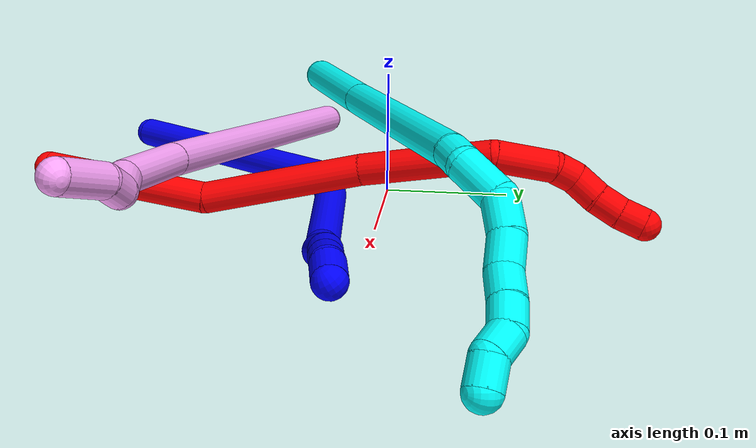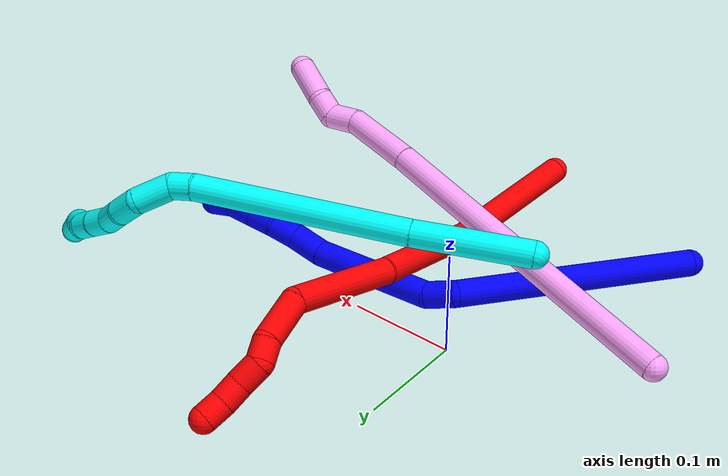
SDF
<sdf version="1.7">
 <world name="default">
  <plugin name="TubeGeneratorPlugin" filename="libtube_generator_plugin.so"/>
  <model name="photoneo_s_sensor">
   <static>1</static>
   <pose>0 0 2 1.57079 1.57079 3.14159</pose>
   <link name="link">
    <inertial><mass>0.1</mass></inertial>
    <sensor name="sensor" type="depth">
     <update_rate>30</update_rate>
     <camera>
      <horizontal_fov>1.22</horizontal_fov>
      <image><width>1920</width><height>1200</height><format>B8G8R8</format></image>
      <clip><near>0.1</near><far>4</far></clip>
      <depth_camera><output>points</output></depth_camera>
     </camera>
     <plugin name="camera_plugin" filename="libgazebo_ros_depth_camera.so">
      <baseline>0.2</baseline>
      <alwaysOn>1</alwaysOn>
      <updateRate>0.0</updateRate>
      <cameraName>camera_ir</cameraName>
      <imageTopicName>/camera/color/image_raw</imageTopicName>
      <cameraInfoTopicName>/camera/color/camera_info</cameraInfoTopicName>
      <depthImageTopicName>/camera/depth/image_raw</depthImageTopicName>
      <depthImageCameraInfoTopicName>/camera/depth/camera_info</depthImageCameraInfoTopicName>
      <pointCloudTopicName>/camera/depth/points</pointCloudTopicName>
      <frameName>fr_optical</frameName>
      <pointCloudCutoff>0.1</pointCloudCutoff>
      <pointCloudCutoffMax>2.0</pointCloudCutoffMax>
      <distortionK1>0</distortionK1>
      <distortionK2>0</distortionK2>
      <distortionK3>0</distortionK3>
      <distortionT1>0</distortionT1>
      <distortionT2>0</distortionT2>
      <CxPrime>0</CxPrime>
      <Cx>0</Cx>
      <Cy>0</Cy>
      <focalLength>0</focalLength>
      <hackBaseline>0</hackBaseline>
     </plugin>
    </sensor>
   </link>
  </model>
  <gravity>0 0 -9.8</gravity>
  <magnetic_field>6e-06 2.3e-05 -4.2e-05</magnetic_field>
  <atmosphere type="adiabatic"/>
  <physics name="default_physics" default="0" type="ode">
   <max_step_size>0.003</max_step_size>
   <real_time_factor>1</real_time_factor>
   <real_time_update_rate>1000</real_time_update_rate>
   <max_contacts>10000</max_contacts>
   <ode>
    <solver>
     <type>quick</type>
     <iters>100</iters>
     <sor>1.3</sor>
     <use_dynamic_moi_rescaling>0</use_dynamic_moi_rescaling>
    </solver>
    <constraints>
     <contact_max_correcting_vel>0</contact_max_correcting_vel>
     <contact_surface_layer>0.001</contact_surface_layer>
     <cfm>0</cfm>
     <erp>0.2</erp>
    </constraints>
   </ode>
  </physics>
  <scene><ambient>0.4 0.4 0.4 1</ambient><background>0.7 0.7 0.7 1</background><shadows>0</shadows></scene>
  <audio><device>default</device></audio>
  <spherical_coordinates>
   <surface_model>EARTH_WGS84</surface_model>
   <latitude_deg>0</latitude_deg>
   <longitude_deg>0</longitude_deg>
   <elevation>0</elevation>
   <heading_deg>0</heading_deg>
  </spherical_coordinates>
  <model name="bin">
   <static>1</static>
   <link name="bottom">
    <collision name="collision-bottom">
     <pose>0 0 -0.01 0 -0 0</pose>
     <geometry><box><size>0.8 0.6 0.02</size></box></geometry>
     <surface>
      <friction><ode><mu>100</mu><mu2>100</mu2></ode></friction>
      <contact><collide_bitmask>65535</collide_bitmask></contact>
     </surface>
    </collision>
   </link>
   <link name="west_wall">
    <collision name="collision-west_wall">
     <pose>-0.41 0 0.1 0 -0 0</pose>
     <geometry><box><size>0.02 0.6 0.2</size></box></geometry>
     <surface>
      <friction><ode><mu>100</mu><mu2>100</mu2></ode></friction>
      <contact><collide_bitmask>65535</collide_bitmask></contact>
     </surface>
    </collision>
   </link>
   <link name="east_wall">
    <collision name="collision-east_wall">
     <pose>0.41 0 0.1 0 -0 0</pose>
     <geometry><box><size>0.02 0.6 0.2</size></box></geometry>
     <surface>
      <friction><ode><mu>100</mu><mu2>100</mu2></ode></friction>
      <contact><collide_bitmask>65535</collide_bitmask></contact>
     </surface>
    </collision>
   </link>
   <link name="south_wall">
    <collision name="collision-south_wall">
     <pose>0 -0.31 0.1 0 -0 0</pose>
     <geometry><box><size>0.8 0.02 0.2</size></box></geometry>
     <surface>
      <friction><ode><mu>100</mu><mu2>100</mu2></ode></friction>
      <contact><collide_bitmask>65535</collide_bitmask></contact>
     </surface>
    </collision>
   </link>
   <link name="north_wall">
    <collision name="collision-north_wall">
     <pose>0 0.31 0.1 0 -0 0</pose>
     <geometry><box><size>0.8 0.02 0.2</size></box></geometry>
     <surface>
      <friction><ode><mu>100</mu><mu2>100</mu2></ode></friction>
      <contact><collide_bitmask>65535</collide_bitmask></contact>
     </surface>
    </collision>
   </link>
  </model>
  <model name="1">
   <static>0</static>
   <link name="1">
    <collision name="collision-cylinder-e_1_1_4">
     <pose>0.072208 0.083812 -0.031362 -1.92886 0.678934 -0.941946</pose>
     <geometry><cylinder><radius>0.0125</radius><length>0.229974</length></cylinder></geometry>
     <surface>
      <friction><ode><mu>1.16</mu><mu2>1.16</mu2><slip1>0</slip1><slip2>0</slip2></ode></friction>
      <contact><ode><kp>1e+06</kp><kd>1</kd><max_vel>0</max_vel><min_depth>0.001</min_depth></ode></contact>
     </surface>
    </collision>
    <visual name="visual-cylinder-e_1_1_4">
     <pose>0.072208 0.083812 -0.031362 -1.92886 0.678934 -0.941946</pose>
     <geometry><cylinder><radius>0.0125</radius><length>0.229974</length></cylinder></geometry>
     <material><ambient>0 0 1 1</ambient></material>
    </visual>
    <collision name="collision-cylinder-e_2_4_5">
     <pose>0.157753 0.170677 -0.066201 -2.42113 1.23689 -2.16789</pose>
     <geometry><cylinder><radius>0.0125</radius><length>0.028236</length></cylinder></geometry>
     <surface>
      <friction><ode><mu>1.16</mu><mu2>1.16</mu2><slip1>0</slip1><slip2>0</slip2></ode></friction>
      <contact><ode><kp>1e+06</kp><kd>1</kd><max_vel>0</max_vel><min_depth>0.001</min_depth></ode></contact>
     </surface>
    </collision>
    <visual name="visual-cylinder-e_2_4_5">
     <pose>0.157753 0.170677 -0.066201 -2.42113 1.23689 -2.16789</pose>
     <geometry><cylinder><radius>0.0125</radius><length>0.028236</length></cylinder></geometry>
     <material><ambient>0 0 1 1</ambient></material>
    </visual>
    <collision name="collision-cylinder-e_3_5_6">
     <pose>0.229198 0.179851 -0.062417 -0.700445 1.40879 -0.60199</pose>
     <geometry><cylinder><radius>0.0125</radius><length>0.117756</length></cylinder></geometry>
     <surface>
      <friction><ode><mu>1.16</mu><mu2>1.16</mu2><slip1>0</slip1><slip2>0</slip2></ode></friction>
      <contact><ode><kp>1e+06</kp><kd>1</kd><max_vel>0</max_vel><min_depth>0.001</min_depth></ode></contact>
     </surface>
    </collision>
    <visual name="visual-cylinder-e_3_5_6">
     <pose>0.229198 0.179851 -0.062417 -0.700445 1.40879 -0.60199</pose>
     <geometry><cylinder><radius>0.0125</radius><length>0.117756</length></cylinder></geometry>
     <material><ambient>0 0 1 1</ambient></material>
    </visual>
    <collision name="collision-cylinder-e_4_6_7">
     <pose>0.301565 0.189495 -0.049901 -0.590583 1.15322 -0.390598</pose>
     <geometry><cylinder><radius>0.0125</radius><length>0.031201</length></cylinder></geometry>
     <surface>
      <friction><ode><mu>1.16</mu><mu2>1.16</mu2><slip1>0</slip1><slip2>0</slip2></ode></friction>
      <contact><ode><kp>1e+06</kp><kd>1</kd><max_vel>0</max_vel><min_depth>0.001</min_depth></ode></contact>
     </surface>
    </collision>
    <visual name="visual-cylinder-e_4_6_7">
     <pose>0.301565 0.189495 -0.049901 -0.590583 1.15322 -0.390598</pose>
     <geometry><cylinder><radius>0.0125</radius><length>0.031201</length></cylinder></geometry>
     <material><ambient>0 0 1 1</ambient></material>
    </visual>
    <collision name="collision-cylinder-e_5_7_8">
     <pose>0.32625 0.198736 -0.040752 -0.972942 0.984902 -0.552978</pose>
     <geometry><cylinder><radius>0.0125</radius><length>0.025022</length></cylinder></geometry>
     <surface>
      <friction><ode><mu>1.16</mu><mu2>1.16</mu2><slip1>0</slip1><slip2>0</slip2></ode></friction>
      <contact><ode><kp>1e+06</kp><kd>1</kd><max_vel>0</max_vel><min_depth>0.001</min_depth></ode></contact>
     </surface>
    </collision>
    <visual name="visual-cylinder-e_5_7_8">
     <pose>0.32625 0.198736 -0.040752 -0.972942 0.984902 -0.552978</pose>
     <geometry><cylinder><radius>0.0125</radius><length>0.025022</length></cylinder></geometry>
     <material><ambient>0 0 1 1</ambient></material>
    </visual>
    <collision name="collision-cylinder-e_6_8_9">
     <pose>0.347037 0.207132 -0.034347 -0.817519 1.23032 -0.594053</pose>
     <geometry><cylinder><radius>0.0125</radius><length>0.021987</length></cylinder></geometry>
     <surface>
      <friction><ode><mu>1.16</mu><mu2>1.16</mu2><slip1>0</slip1><slip2>0</slip2></ode></friction>
      <contact><ode><kp>1e+06</kp><kd>1</kd><max_vel>0</max_vel><min_depth>0.001</min_depth></ode></contact>
     </surface>
    </collision>
    <visual name="visual-cylinder-e_6_8_9">
     <pose>0.347037 0.207132 -0.034347 -0.817519 1.23032 -0.594053</pose>
     <geometry><cylinder><radius>0.0125</radius><length>0.021987</length></cylinder></geometry>
     <material><ambient>0 0 1 1</ambient></material>
    </visual>
    <collision name="collision-cylinder-e_7_9_10">
     <pose>0.368501 0.21329 -0.029075 -0.900192 1.19014 -0.632211</pose>
     <geometry><cylinder><radius>0.0125</radius><length>0.023916</length></cylinder></geometry>
     <surface>
      <friction><ode><mu>1.16</mu><mu2>1.16</mu2><slip1>0</slip1><slip2>0</slip2></ode></friction>
      <contact><ode><kp>1e+06</kp><kd>1</kd><max_vel>0</max_vel><min_depth>0.001</min_depth></ode></contact>
     </surface>
    </collision>
    <visual name="visual-cylinder-e_7_9_10">
     <pose>0.368501 0.21329 -0.029075 -0.900192 1.19014 -0.632211</pose>
     <geometry><cylinder><radius>0.0125</radius><length>0.023916</length></cylinder></geometry>
     <material><ambient>0 0 1 1</ambient></material>
    </visual>
    <collision name="collision-cylinder-e_8_10_2">
     <pose>0.390456 0.218046 -0.027083 -2.11384 1.43445 -1.99279</pose>
     <geometry><cylinder><radius>0.0125</radius><length>0.021908</length></cylinder></geometry>
     <surface>
      <friction><ode><mu>1.16</mu><mu2>1.16</mu2><slip1>0</slip1><slip2>0</slip2></ode></friction>
      <contact><ode><kp>1e+06</kp><kd>1</kd><max_vel>0</max_vel><min_depth>0.001</min_depth></ode></contact>
     </surface>
    </collision>
    <visual name="visual-cylinder-e_8_10_2">
     <pose>0.390456 0.218046 -0.027083 -2.11384 1.43445 -1.99279</pose>
     <geometry><cylinder><radius>0.0125</radius><length>0.021908</length></cylinder></geometry>
     <material><ambient>0 0 1 1</ambient></material>
    </visual>
    <collision name="collision-sphere-2">
     <pose>0.401308 0.219321 -0.027852 0 -0 0</pose>
     <geometry><sphere><radius>0.0125</radius></sphere></geometry>
     <surface>
      <friction><ode><mu>1.16</mu><mu2>1.16</mu2><slip1>0</slip1><slip2>0</slip2></ode></friction>
      <contact><ode><kp>1e+06</kp><kd>1</kd><max_vel>0</max_vel><min_depth>0.001</min_depth></ode></contact>
     </surface>
    </collision>
    <visual name="visual-sphere-2">
     <pose>0.401308 0.219321 -0.027852 0 -0 0</pose>
     <geometry><sphere><radius>0.0125</radius></sphere></geometry>
     <material><ambient>0 0 1 1</ambient></material>
    </visual>
    <collision name="collision-sphere-10">
     <pose>0.379604 0.216771 -0.026314 0 -0 0</pose>
     <geometry><sphere><radius>0.0125</radius></sphere></geometry>
     <surface>
      <friction><ode><mu>1.16</mu><mu2>1.16</mu2><slip1>0</slip1><slip2>0</slip2></ode></friction>
      <contact><ode><kp>1e+06</kp><kd>1</kd><max_vel>0</max_vel><min_depth>0.001</min_depth></ode></contact>
     </surface>
    </collision>
    <visual name="visual-sphere-10">
     <pose>0.379604 0.216771 -0.026314 0 -0 0</pose>
     <geometry><sphere><radius>0.0125</radius></sphere></geometry>
     <material><ambient>0 0 1 1</ambient></material>
    </visual>
    <collision name="collision-sphere-9">
     <pose>0.357399 0.20981 -0.031836 0 -0 0</pose>
     <geometry><sphere><radius>0.0125</radius></sphere></geometry>
     <surface>
      <friction><ode><mu>1.16</mu><mu2>1.16</mu2><slip1>0</slip1><slip2>0</slip2></ode></friction>
      <contact><ode><kp>1e+06</kp><kd>1</kd><max_vel>0</max_vel><min_depth>0.001</min_depth></ode></contact>
     </surface>
    </collision>
    <visual name="visual-sphere-9">
     <pose>0.357399 0.20981 -0.031836 0 -0 0</pose>
     <geometry><sphere><radius>0.0125</radius></sphere></geometry>
     <material><ambient>0 0 1 1</ambient></material>
    </visual>
    <collision name="collision-sphere-4">
     <pose>0.144415 0.167624 -0.062723 0 -0 0</pose>
     <geometry><sphere><radius>0.0125</radius></sphere></geometry>
     <surface>
      <friction><ode><mu>1.16</mu><mu2>1.16</mu2><slip1>0</slip1><slip2>0</slip2></ode></friction>
      <contact><ode><kp>1e+06</kp><kd>1</kd><max_vel>0</max_vel><min_depth>0.001</min_depth></ode></contact>
     </surface>
    </collision>
    <visual name="visual-sphere-4">
     <pose>0.144415 0.167624 -0.062723 0 -0 0</pose>
     <geometry><sphere><radius>0.0125</radius></sphere></geometry>
     <material><ambient>0 0 1 1</ambient></material>
    </visual>
    <collision name="collision-sphere-1">
     <geometry><sphere><radius>0.0125</radius></sphere></geometry>
     <surface>
      <friction><ode><mu>1.16</mu><mu2>1.16</mu2><slip1>0</slip1><slip2>0</slip2></ode></friction>
      <contact><ode><kp>1e+06</kp><kd>1</kd><max_vel>0</max_vel><min_depth>0.001</min_depth></ode></contact>
     </surface>
    </collision>
    <visual name="visual-sphere-1">
     <geometry><sphere><radius>0.0125</radius></sphere></geometry>
     <material><ambient>0 0 1 1</ambient></material>
    </visual>
    <collision name="collision-sphere-8">
     <pose>0.336674 0.204454 -0.036858 0 -0 0</pose>
     <geometry><sphere><radius>0.0125</radius></sphere></geometry>
     <surface>
      <friction><ode><mu>1.16</mu><mu2>1.16</mu2><slip1>0</slip1><slip2>0</slip2></ode></friction>
      <contact><ode><kp>1e+06</kp><kd>1</kd><max_vel>0</max_vel><min_depth>0.001</min_depth></ode></contact>
     </surface>
    </collision>
    <visual name="visual-sphere-8">
     <pose>0.336674 0.204454 -0.036858 0 -0 0</pose>
     <geometry><sphere><radius>0.0125</radius></sphere></geometry>
     <material><ambient>0 0 1 1</ambient></material>
    </visual>
    <collision name="collision-sphere-5">
     <pose>0.171091 0.173729 -0.069678 0 -0 0</pose>
     <geometry><sphere><radius>0.0125</radius></sphere></geometry>
     <surface>
      <friction><ode><mu>1.16</mu><mu2>1.16</mu2><slip1>0</slip1><slip2>0</slip2></ode></friction>
      <contact><ode><kp>1e+06</kp><kd>1</kd><max_vel>0</max_vel><min_depth>0.001</min_depth></ode></contact>
     </surface>
    </collision>
    <visual name="visual-sphere-5">
     <pose>0.171091 0.173729 -0.069678 0 -0 0</pose>
     <geometry><sphere><radius>0.0125</radius></sphere></geometry>
     <material><ambient>0 0 1 1</ambient></material>
    </visual>
    <collision name="collision-sphere-6">
     <pose>0.287305 0.185972 -0.055156 0 -0 0</pose>
     <geometry><sphere><radius>0.0125</radius></sphere></geometry>
     <surface>
      <friction><ode><mu>1.16</mu><mu2>1.16</mu2><slip1>0</slip1><slip2>0</slip2></ode></friction>
      <contact><ode><kp>1e+06</kp><kd>1</kd><max_vel>0</max_vel><min_depth>0.001</min_depth></ode></contact>
     </surface>
    </collision>
    <visual name="visual-sphere-6">
     <pose>0.287305 0.185972 -0.055156 0 -0 0</pose>
     <geometry><sphere><radius>0.0125</radius></sphere></geometry>
     <material><ambient>0 0 1 1</ambient></material>
    </visual>
    <collision name="collision-sphere-7">
     <pose>0.315825 0.193018 -0.044646 0 -0 0</pose>
     <geometry><sphere><radius>0.0125</radius></sphere></geometry>
     <surface>
      <friction><ode><mu>1.16</mu><mu2>1.16</mu2><slip1>0</slip1><slip2>0</slip2></ode></friction>
      <contact><ode><kp>1e+06</kp><kd>1</kd><max_vel>0</max_vel><min_depth>0.001</min_depth></ode></contact>
     </surface>
    </collision>
    <visual name="visual-sphere-7">
     <pose>0.315825 0.193018 -0.044646 0 -0 0</pose>
     <geometry><sphere><radius>0.0125</radius></sphere></geometry>
     <material><ambient>0 0 1 1</ambient></material>
    </visual>
    <inertial>
     <pose>0.18124 0.14118 -0.042104 0 -0 0</pose>
     <mass>0.5</mass>
     <inertia>
      <ixx>-0.000138</ixx>
      <ixy>0</ixy>
      <ixz>0</ixz>
      <iyy>-0.000214</iyy>
      <iyz>0</iyz>
      <izz>-0.00156</izz>
     </inertia>
    </inertial>
   </link>
   <pose>-0.109102 -0.235906 0.011498 0.529032 0.159554 0.060235</pose>
  </model>
  <model name="2">
   <static>0</static>
   <link name="2">
    <collision name="collision-cylinder-e_1_1_4">
     <pose>0.010114 0.062442 -0.024041 -1.93831 0.150023 -0.218061</pose>
     <geometry><cylinder><radius>0.0125</radius><length>0.135341</length></cylinder></geometry>
     <surface>
      <friction><ode><mu>1.16</mu><mu2>1.16</mu2><slip1>0</slip1><slip2>0</slip2></ode></friction>
      <contact><ode><kp>1e+06</kp><kd>1</kd><max_vel>0</max_vel><min_depth>0.001</min_depth></ode></contact>
     </surface>
    </collision>
    <visual name="visual-cylinder-e_1_1_4">
     <pose>0.010114 0.062442 -0.024041 -1.93831 0.150023 -0.218061</pose>
     <geometry><cylinder><radius>0.0125</radius><length>0.135341</length></cylinder></geometry>
     <material><ambient>1 0 0 1</ambient></material>
    </visual>
    <collision name="collision-cylinder-e_2_4_5">
     <pose>0.018973 0.188661 -0.05104 -1.61715 -0.019664 0.020598</pose>
     <geometry><cylinder><radius>0.0125</radius><length>0.127715</length></cylinder></geometry>
     <surface>
      <friction><ode><mu>1.16</mu><mu2>1.16</mu2><slip1>0</slip1><slip2>0</slip2></ode></friction>
      <contact><ode><kp>1e+06</kp><kd>1</kd><max_vel>0</max_vel><min_depth>0.001</min_depth></ode></contact>
     </surface>
    </collision>
    <visual name="visual-cylinder-e_2_4_5">
     <pose>0.018973 0.188661 -0.05104 -1.61715 -0.019664 0.020598</pose>
     <geometry><cylinder><radius>0.0125</radius><length>0.127715</length></cylinder></geometry>
     <material><ambient>1 0 0 1</ambient></material>
    </visual>
    <collision name="collision-cylinder-e_3_5_6">
     <pose>0.02542 0.304742 -0.056993 -1.62798 0.145995 -0.154558</pose>
     <geometry><cylinder><radius>0.0125</radius><length>0.105906</length></cylinder></geometry>
     <surface>
      <friction><ode><mu>1.16</mu><mu2>1.16</mu2><slip1>0</slip1><slip2>0</slip2></ode></friction>
      <contact><ode><kp>1e+06</kp><kd>1</kd><max_vel>0</max_vel><min_depth>0.001</min_depth></ode></contact>
     </surface>
    </collision>
    <visual name="visual-cylinder-e_3_5_6">
     <pose>0.02542 0.304742 -0.056993 -1.62798 0.145995 -0.154558</pose>
     <geometry><cylinder><radius>0.0125</radius><length>0.105906</length></cylinder></geometry>
     <material><ambient>1 0 0 1</ambient></material>
    </visual>
    <collision name="collision-cylinder-e_4_6_7">
     <pose>0.029333 0.377438 -0.071012 -2.06644 -0.162079 0.270809</pose>
     <geometry><cylinder><radius>0.0125</radius><length>0.046979</length></cylinder></geometry>
     <surface>
      <friction><ode><mu>1.16</mu><mu2>1.16</mu2><slip1>0</slip1><slip2>0</slip2></ode></friction>
      <contact><ode><kp>1e+06</kp><kd>1</kd><max_vel>0</max_vel><min_depth>0.001</min_depth></ode></contact>
     </surface>
    </collision>
    <visual name="visual-cylinder-e_4_6_7">
     <pose>0.029333 0.377438 -0.071012 -2.06644 -0.162079 0.270809</pose>
     <geometry><cylinder><radius>0.0125</radius><length>0.046979</length></cylinder></geometry>
     <material><ambient>1 0 0 1</ambient></material>
    </visual>
    <collision name="collision-cylinder-e_5_7_8">
     <pose>0.022961 0.404383 -0.089381 -2.41305 -0.256491 0.652255</pose>
     <geometry><cylinder><radius>0.0125</radius><length>0.02035</length></cylinder></geometry>
     <surface>
      <friction><ode><mu>1.16</mu><mu2>1.16</mu2><slip1>0</slip1><slip2>0</slip2></ode></friction>
      <contact><ode><kp>1e+06</kp><kd>1</kd><max_vel>0</max_vel><min_depth>0.001</min_depth></ode></contact>
     </surface>
    </collision>
    <visual name="visual-cylinder-e_5_7_8">
     <pose>0.022961 0.404383 -0.089381 -2.41305 -0.256491 0.652255</pose>
     <geometry><cylinder><radius>0.0125</radius><length>0.02035</length></cylinder></geometry>
     <material><ambient>1 0 0 1</ambient></material>
    </visual>
    <collision name="collision-cylinder-e_6_8_9">
     <pose>0.024684 0.417604 -0.105054 -2.46653 0.383387 -1.01026</pose>
     <geometry><cylinder><radius>0.0125</radius><length>0.023011</length></cylinder></geometry>
     <surface>
      <friction><ode><mu>1.16</mu><mu2>1.16</mu2><slip1>0</slip1><slip2>0</slip2></ode></friction>
      <contact><ode><kp>1e+06</kp><kd>1</kd><max_vel>0</max_vel><min_depth>0.001</min_depth></ode></contact>
     </surface>
    </collision>
    <visual name="visual-cylinder-e_6_8_9">
     <pose>0.024684 0.417604 -0.105054 -2.46653 0.383387 -1.01026</pose>
     <geometry><cylinder><radius>0.0125</radius><length>0.023011</length></cylinder></geometry>
     <material><ambient>1 0 0 1</ambient></material>
    </visual>
    <collision name="collision-cylinder-e_7_9_10">
     <pose>0.0314 0.431407 -0.120417 -2.349 0.236222 -0.552666</pose>
     <geometry><cylinder><radius>0.0125</radius><length>0.020609</length></cylinder></geometry>
     <surface>
      <friction><ode><mu>1.16</mu><mu2>1.16</mu2><slip1>0</slip1><slip2>0</slip2></ode></friction>
      <contact><ode><kp>1e+06</kp><kd>1</kd><max_vel>0</max_vel><min_depth>0.001</min_depth></ode></contact>
     </surface>
    </collision>
    <visual name="visual-cylinder-e_7_9_10">
     <pose>0.0314 0.431407 -0.120417 -2.349 0.236222 -0.552666</pose>
     <geometry><cylinder><radius>0.0125</radius><length>0.020609</length></cylinder></geometry>
     <material><ambient>1 0 0 1</ambient></material>
    </visual>
    <collision name="collision-cylinder-e_8_10_2">
     <pose>0.03622 0.446537 -0.133033 -2.18044 0.24219 -0.458624</pose>
     <geometry><cylinder><radius>0.0125</radius><length>0.020088</length></cylinder></geometry>
     <surface>
      <friction><ode><mu>1.16</mu><mu2>1.16</mu2><slip1>0</slip1><slip2>0</slip2></ode></friction>
      <contact><ode><kp>1e+06</kp><kd>1</kd><max_vel>0</max_vel><min_depth>0.001</min_depth></ode></contact>
     </surface>
    </collision>
    <visual name="visual-cylinder-e_8_10_2">
     <pose>0.03622 0.446537 -0.133033 -2.18044 0.24219 -0.458624</pose>
     <geometry><cylinder><radius>0.0125</radius><length>0.020088</length></cylinder></geometry>
     <material><ambient>1 0 0 1</ambient></material>
    </visual>
    <collision name="collision-sphere-2">
     <pose>0.038629 0.454531 -0.138617 0 -0 0</pose>
     <geometry><sphere><radius>0.0125</radius></sphere></geometry>
     <surface>
      <friction><ode><mu>1.16</mu><mu2>1.16</mu2><slip1>0</slip1><slip2>0</slip2></ode></friction>
      <contact><ode><kp>1e+06</kp><kd>1</kd><max_vel>0</max_vel><min_depth>0.001</min_depth></ode></contact>
     </surface>
    </collision>
    <visual name="visual-sphere-2">
     <pose>0.038629 0.454531 -0.138617 0 -0 0</pose>
     <geometry><sphere><radius>0.0125</radius></sphere></geometry>
     <material><ambient>1 0 0 1</ambient></material>
    </visual>
    <collision name="collision-sphere-10">
     <pose>0.033811 0.438542 -0.12745 0 -0 0</pose>
     <geometry><sphere><radius>0.0125</radius></sphere></geometry>
     <surface>
      <friction><ode><mu>1.16</mu><mu2>1.16</mu2><slip1>0</slip1><slip2>0</slip2></ode></friction>
      <contact><ode><kp>1e+06</kp><kd>1</kd><max_vel>0</max_vel><min_depth>0.001</min_depth></ode></contact>
     </surface>
    </collision>
    <visual name="visual-sphere-10">
     <pose>0.033811 0.438542 -0.12745 0 -0 0</pose>
     <geometry><sphere><radius>0.0125</radius></sphere></geometry>
     <material><ambient>1 0 0 1</ambient></material>
    </visual>
    <collision name="collision-sphere-9">
     <pose>0.028988 0.424272 -0.113384 0 -0 0</pose>
     <geometry><sphere><radius>0.0125</radius></sphere></geometry>
     <surface>
      <friction><ode><mu>1.16</mu><mu2>1.16</mu2><slip1>0</slip1><slip2>0</slip2></ode></friction>
      <contact><ode><kp>1e+06</kp><kd>1</kd><max_vel>0</max_vel><min_depth>0.001</min_depth></ode></contact>
     </surface>
    </collision>
    <visual name="visual-sphere-9">
     <pose>0.028988 0.424272 -0.113384 0 -0 0</pose>
     <geometry><sphere><radius>0.0125</radius></sphere></geometry>
     <material><ambient>1 0 0 1</ambient></material>
    </visual>
    <collision name="collision-sphere-4">
     <pose>0.020228 0.124885 -0.048081 0 -0 0</pose>
     <geometry><sphere><radius>0.0125</radius></sphere></geometry>
     <surface>
      <friction><ode><mu>1.16</mu><mu2>1.16</mu2><slip1>0</slip1><slip2>0</slip2></ode></friction>
      <contact><ode><kp>1e+06</kp><kd>1</kd><max_vel>0</max_vel><min_depth>0.001</min_depth></ode></contact>
     </surface>
    </collision>
    <visual name="visual-sphere-4">
     <pose>0.020228 0.124885 -0.048081 0 -0 0</pose>
     <geometry><sphere><radius>0.0125</radius></sphere></geometry>
     <material><ambient>1 0 0 1</ambient></material>
    </visual>
    <collision name="collision-sphere-1">
     <geometry><sphere><radius>0.0125</radius></sphere></geometry>
     <surface>
      <friction><ode><mu>1.16</mu><mu2>1.16</mu2><slip1>0</slip1><slip2>0</slip2></ode></friction>
      <contact><ode><kp>1e+06</kp><kd>1</kd><max_vel>0</max_vel><min_depth>0.001</min_depth></ode></contact>
     </surface>
    </collision>
    <visual name="visual-sphere-1">
     <geometry><sphere><radius>0.0125</radius></sphere></geometry>
     <material><ambient>1 0 0 1</ambient></material>
    </visual>
    <collision name="collision-sphere-8">
     <pose>0.02038 0.410936 -0.096724 0 -0 0</pose>
     <geometry><sphere><radius>0.0125</radius></sphere></geometry>
     <surface>
      <friction><ode><mu>1.16</mu><mu2>1.16</mu2><slip1>0</slip1><slip2>0</slip2></ode></friction>
      <contact><ode><kp>1e+06</kp><kd>1</kd><max_vel>0</max_vel><min_depth>0.001</min_depth></ode></contact>
     </surface>
    </collision>
    <visual name="visual-sphere-8">
     <pose>0.02038 0.410936 -0.096724 0 -0 0</pose>
     <geometry><sphere><radius>0.0125</radius></sphere></geometry>
     <material><ambient>1 0 0 1</ambient></material>
    </visual>
    <collision name="collision-sphere-5">
     <pose>0.017717 0.252438 -0.053998 0 -0 0</pose>
     <geometry><sphere><radius>0.0125</radius></sphere></geometry>
     <surface>
      <friction><ode><mu>1.16</mu><mu2>1.16</mu2><slip1>0</slip1><slip2>0</slip2></ode></friction>
      <contact><ode><kp>1e+06</kp><kd>1</kd><max_vel>0</max_vel><min_depth>0.001</min_depth></ode></contact>
     </surface>
    </collision>
    <visual name="visual-sphere-5">
     <pose>0.017717 0.252438 -0.053998 0 -0 0</pose>
     <geometry><sphere><radius>0.0125</radius></sphere></geometry>
     <material><ambient>1 0 0 1</ambient></material>
    </visual>
    <collision name="collision-sphere-6">
     <pose>0.033124 0.357046 -0.059987 0 -0 0</pose>
     <geometry><sphere><radius>0.0125</radius></sphere></geometry>
     <surface>
      <friction><ode><mu>1.16</mu><mu2>1.16</mu2><slip1>0</slip1><slip2>0</slip2></ode></friction>
      <contact><ode><kp>1e+06</kp><kd>1</kd><max_vel>0</max_vel><min_depth>0.001</min_depth></ode></contact>
     </surface>
    </collision>
    <visual name="visual-sphere-6">
     <pose>0.033124 0.357046 -0.059987 0 -0 0</pose>
     <geometry><sphere><radius>0.0125</radius></sphere></geometry>
     <material><ambient>1 0 0 1</ambient></material>
    </visual>
    <collision name="collision-sphere-7">
     <pose>0.025543 0.39783 -0.082037 0 -0 0</pose>
     <geometry><sphere><radius>0.0125</radius></sphere></geometry>
     <surface>
      <friction><ode><mu>1.16</mu><mu2>1.16</mu2><slip1>0</slip1><slip2>0</slip2></ode></friction>
      <contact><ode><kp>1e+06</kp><kd>1</kd><max_vel>0</max_vel><min_depth>0.001</min_depth></ode></contact>
     </surface>
    </collision>
    <visual name="visual-sphere-7">
     <pose>0.025543 0.39783 -0.082037 0 -0 0</pose>
     <geometry><sphere><radius>0.0125</radius></sphere></geometry>
     <material><ambient>1 0 0 1</ambient></material>
    </visual>
    <inertial>
     <pose>0.020544 0.236503 -0.057069 0 -0 0</pose>
     <mass>0.5</mass>
     <inertia>
      <ixx>0.000445</ixx>
      <ixy>0</ixy>
      <ixz>0</ixz>
      <iyy>-0.000108</iyy>
      <iyz>0</iyz>
      <izz>-0.000542</izz>
     </inertia>
    </inertial>
   </link>
   <pose>0.065123 -0.271384 0.029064 0.267915 0.111542 0.021275</pose>
  </model>
  <model name="3">
   <static>0</static>
   <link name="3">
    <collision name="collision-cylinder-e_1_1_4">
     <pose>0.034739 0.040802 0.00736 -1.39234 0.697406 -0.589966</pose>
     <geometry><cylinder><radius>0.0125</radius><length>0.108181</length></cylinder></geometry>
     <surface>
      <friction><ode><mu>1.16</mu><mu2>1.16</mu2><slip1>0</slip1><slip2>0</slip2></ode></friction>
      <contact><ode><kp>1e+06</kp><kd>1</kd><max_vel>0</max_vel><min_depth>0.001</min_depth></ode></contact>
     </surface>
    </collision>
    <visual name="visual-cylinder-e_1_1_4">
     <pose>0.034739 0.040802 0.00736 -1.39234 0.697406 -0.589966</pose>
     <geometry><cylinder><radius>0.0125</radius><length>0.108181</length></cylinder></geometry>
     <material><ambient>0.003922 1 0.996078 1</ambient></material>
    </visual>
    <collision name="collision-cylinder-e_2_4_5">
     <pose>0.131411 0.158446 0.03084 -1.36401 0.667895 -0.549188</pose>
     <geometry><cylinder><radius>0.0125</radius><length>0.200002</length></cylinder></geometry>
     <surface>
      <friction><ode><mu>1.16</mu><mu2>1.16</mu2><slip1>0</slip1><slip2>0</slip2></ode></friction>
      <contact><ode><kp>1e+06</kp><kd>1</kd><max_vel>0</max_vel><min_depth>0.001</min_depth></ode></contact>
     </surface>
    </collision>
    <visual name="visual-cylinder-e_2_4_5">
     <pose>0.131411 0.158446 0.03084 -1.36401 0.667895 -0.549188</pose>
     <geometry><cylinder><radius>0.0125</radius><length>0.200002</length></cylinder></geometry>
     <material><ambient>0.003922 1 0.996078 1</ambient></material>
    </visual>
    <collision name="collision-cylinder-e_3_5_6">
     <pose>0.201092 0.242246 0.04821 -1.39307 0.830965 -0.706967</pose>
     <geometry><cylinder><radius>0.0125</radius><length>0.020977</length></cylinder></geometry>
     <surface>
      <friction><ode><mu>1.16</mu><mu2>1.16</mu2><slip1>0</slip1><slip2>0</slip2></ode></friction>
      <contact><ode><kp>1e+06</kp><kd>1</kd><max_vel>0</max_vel><min_depth>0.001</min_depth></ode></contact>
     </surface>
    </collision>
    <visual name="visual-cylinder-e_3_5_6">
     <pose>0.201092 0.242246 0.04821 -1.39307 0.830965 -0.706967</pose>
     <geometry><cylinder><radius>0.0125</radius><length>0.020977</length></cylinder></geometry>
     <material><ambient>0.003922 1 0.996078 1</ambient></material>
    </visual>
    <collision name="collision-cylinder-e_4_6_7">
     <pose>0.223879 0.256919 0.04482 -2.11238 1.03148 -1.57344</pose>
     <geometry><cylinder><radius>0.0125</radius><length>0.035056</length></cylinder></geometry>
     <surface>
      <friction><ode><mu>1.16</mu><mu2>1.16</mu2><slip1>0</slip1><slip2>0</slip2></ode></friction>
      <contact><ode><kp>1e+06</kp><kd>1</kd><max_vel>0</max_vel><min_depth>0.001</min_depth></ode></contact>
     </surface>
    </collision>
    <visual name="visual-cylinder-e_4_6_7">
     <pose>0.223879 0.256919 0.04482 -2.11238 1.03148 -1.57344</pose>
     <geometry><cylinder><radius>0.0125</radius><length>0.035056</length></cylinder></geometry>
     <material><ambient>0.003922 1 0.996078 1</ambient></material>
    </visual>
    <collision name="collision-cylinder-e_5_7_8">
     <pose>0.252027 0.265771 0.041749 -0.627905 1.42398 -0.546401</pose>
     <geometry><cylinder><radius>0.0125</radius><length>0.026501</length></cylinder></geometry>
     <surface>
      <friction><ode><mu>1.16</mu><mu2>1.16</mu2><slip1>0</slip1><slip2>0</slip2></ode></friction>
      <contact><ode><kp>1e+06</kp><kd>1</kd><max_vel>0</max_vel><min_depth>0.001</min_depth></ode></contact>
     </surface>
    </collision>
    <visual name="visual-cylinder-e_5_7_8">
     <pose>0.252027 0.265771 0.041749 -0.627905 1.42398 -0.546401</pose>
     <geometry><cylinder><radius>0.0125</radius><length>0.026501</length></cylinder></geometry>
     <material><ambient>0.003922 1 0.996078 1</ambient></material>
    </visual>
    <collision name="collision-cylinder-e_6_8_9">
     <pose>0.276638 0.266401 0.047265 0.12816 1.23766 0.09133</pose>
     <geometry><cylinder><radius>0.0125</radius><length>0.024344</length></cylinder></geometry>
     <surface>
      <friction><ode><mu>1.16</mu><mu2>1.16</mu2><slip1>0</slip1><slip2>0</slip2></ode></friction>
      <contact><ode><kp>1e+06</kp><kd>1</kd><max_vel>0</max_vel><min_depth>0.001</min_depth></ode></contact>
     </surface>
    </collision>
    <visual name="visual-cylinder-e_6_8_9">
     <pose>0.276638 0.266401 0.047265 0.12816 1.23766 0.09133</pose>
     <geometry><cylinder><radius>0.0125</radius><length>0.024344</length></cylinder></geometry>
     <material><ambient>0.003922 1 0.996078 1</ambient></material>
    </visual>
    <collision name="collision-cylinder-e_7_9_10">
     <pose>0.298644 0.268847 0.054492 -0.733345 1.17297 -0.499707</pose>
     <geometry><cylinder><radius>0.0125</radius><length>0.022786</length></cylinder></geometry>
     <surface>
      <friction><ode><mu>1.16</mu><mu2>1.16</mu2><slip1>0</slip1><slip2>0</slip2></ode></friction>
      <contact><ode><kp>1e+06</kp><kd>1</kd><max_vel>0</max_vel><min_depth>0.001</min_depth></ode></contact>
     </surface>
    </collision>
    <visual name="visual-cylinder-e_7_9_10">
     <pose>0.298644 0.268847 0.054492 -0.733345 1.17297 -0.499707</pose>
     <geometry><cylinder><radius>0.0125</radius><length>0.022786</length></cylinder></geometry>
     <material><ambient>0.003922 1 0.996078 1</ambient></material>
    </visual>
    <collision name="collision-cylinder-e_8_10_11">
     <pose>0.318876 0.273664 0.061642 -0.448579 1.15495 -0.29512</pose>
     <geometry><cylinder><radius>0.0125</radius><length>0.02127</length></cylinder></geometry>
     <surface>
      <friction><ode><mu>1.16</mu><mu2>1.16</mu2><slip1>0</slip1><slip2>0</slip2></ode></friction>
      <contact><ode><kp>1e+06</kp><kd>1</kd><max_vel>0</max_vel><min_depth>0.001</min_depth></ode></contact>
     </surface>
    </collision>
    <visual name="visual-cylinder-e_8_10_11">
     <pose>0.318876 0.273664 0.061642 -0.448579 1.15495 -0.29512</pose>
     <geometry><cylinder><radius>0.0125</radius><length>0.02127</length></cylinder></geometry>
     <material><ambient>0.003922 1 0.996078 1</ambient></material>
    </visual>
    <collision name="collision-cylinder-e_9_11_12">
     <pose>0.335154 0.27552 0.073109 0.000961 0.711611 0.000357</pose>
     <geometry><cylinder><radius>0.0125</radius><length>0.020059</length></cylinder></geometry>
     <surface>
      <friction><ode><mu>1.16</mu><mu2>1.16</mu2><slip1>0</slip1><slip2>0</slip2></ode></friction>
      <contact><ode><kp>1e+06</kp><kd>1</kd><max_vel>0</max_vel><min_depth>0.001</min_depth></ode></contact>
     </surface>
    </collision>
    <visual name="visual-cylinder-e_9_11_12">
     <pose>0.335154 0.27552 0.073109 0.000961 0.711611 0.000357</pose>
     <geometry><cylinder><radius>0.0125</radius><length>0.020059</length></cylinder></geometry>
     <material><ambient>0.003922 1 0.996078 1</ambient></material>
    </visual>
    <collision name="collision-cylinder-e_10_12_2">
     <pose>0.351294 0.273387 0.084156 0.551842 1.17084 0.371098</pose>
     <geometry><cylinder><radius>0.0125</radius><length>0.020824</length></cylinder></geometry>
     <surface>
      <friction><ode><mu>1.16</mu><mu2>1.16</mu2><slip1>0</slip1><slip2>0</slip2></ode></friction>
      <contact><ode><kp>1e+06</kp><kd>1</kd><max_vel>0</max_vel><min_depth>0.001</min_depth></ode></contact>
     </surface>
    </collision>
    <visual name="visual-cylinder-e_10_12_2">
     <pose>0.351294 0.273387 0.084156 0.551842 1.17084 0.371098</pose>
     <geometry><cylinder><radius>0.0125</radius><length>0.020824</length></cylinder></geometry>
     <material><ambient>0.003922 1 0.996078 1</ambient></material>
    </visual>
    <collision name="collision-sphere-2">
     <pose>0.360884 0.271262 0.087609 0 -0 0</pose>
     <geometry><sphere><radius>0.0125</radius></sphere></geometry>
     <surface>
      <friction><ode><mu>1.16</mu><mu2>1.16</mu2><slip1>0</slip1><slip2>0</slip2></ode></friction>
      <contact><ode><kp>1e+06</kp><kd>1</kd><max_vel>0</max_vel><min_depth>0.001</min_depth></ode></contact>
     </surface>
    </collision>
    <visual name="visual-sphere-2">
     <pose>0.360884 0.271262 0.087609 0 -0 0</pose>
     <geometry><sphere><radius>0.0125</radius></sphere></geometry>
     <material><ambient>0.003922 1 0.996078 1</ambient></material>
    </visual>
    <collision name="collision-sphere-12">
     <pose>0.341704 0.275513 0.080704 0 -0 0</pose>
     <geometry><sphere><radius>0.0125</radius></sphere></geometry>
     <surface>
      <friction><ode><mu>1.16</mu><mu2>1.16</mu2><slip1>0</slip1><slip2>0</slip2></ode></friction>
      <contact><ode><kp>1e+06</kp><kd>1</kd><max_vel>0</max_vel><min_depth>0.001</min_depth></ode></contact>
     </surface>
    </collision>
    <visual name="visual-sphere-12">
     <pose>0.341704 0.275513 0.080704 0 -0 0</pose>
     <geometry><sphere><radius>0.0125</radius></sphere></geometry>
     <material><ambient>0.003922 1 0.996078 1</ambient></material>
    </visual>
    <collision name="collision-sphere-11">
     <pose>0.328604 0.275527 0.065513 0 -0 0</pose>
     <geometry><sphere><radius>0.0125</radius></sphere></geometry>
     <surface>
      <friction><ode><mu>1.16</mu><mu2>1.16</mu2><slip1>0</slip1><slip2>0</slip2></ode></friction>
      <contact><ode><kp>1e+06</kp><kd>1</kd><max_vel>0</max_vel><min_depth>0.001</min_depth></ode></contact>
     </surface>
    </collision>
    <visual name="visual-sphere-11">
     <pose>0.328604 0.275527 0.065513 0 -0 0</pose>
     <geometry><sphere><radius>0.0125</radius></sphere></geometry>
     <material><ambient>0.003922 1 0.996078 1</ambient></material>
    </visual>
    <collision name="collision-sphere-10">
     <pose>0.309147 0.271801 0.057771 0 -0 0</pose>
     <geometry><sphere><radius>0.0125</radius></sphere></geometry>
     <surface>
      <friction><ode><mu>1.16</mu><mu2>1.16</mu2><slip1>0</slip1><slip2>0</slip2></ode></friction>
      <contact><ode><kp>1e+06</kp><kd>1</kd><max_vel>0</max_vel><min_depth>0.001</min_depth></ode></contact>
     </surface>
    </collision>
    <visual name="visual-sphere-10">
     <pose>0.309147 0.271801 0.057771 0 -0 0</pose>
     <geometry><sphere><radius>0.0125</radius></sphere></geometry>
     <material><ambient>0.003922 1 0.996078 1</ambient></material>
    </visual>
    <collision name="collision-sphere-9">
     <pose>0.288141 0.265892 0.051213 0 -0 0</pose>
     <geometry><sphere><radius>0.0125</radius></sphere></geometry>
     <surface>
      <friction><ode><mu>1.16</mu><mu2>1.16</mu2><slip1>0</slip1><slip2>0</slip2></ode></friction>
      <contact><ode><kp>1e+06</kp><kd>1</kd><max_vel>0</max_vel><min_depth>0.001</min_depth></ode></contact>
     </surface>
    </collision>
    <visual name="visual-sphere-9">
     <pose>0.288141 0.265892 0.051213 0 -0 0</pose>
     <geometry><sphere><radius>0.0125</radius></sphere></geometry>
     <material><ambient>0.003922 1 0.996078 1</ambient></material>
    </visual>
    <collision name="collision-sphere-4">
     <pose>0.069477 0.081605 0.01472 0 -0 0</pose>
     <geometry><sphere><radius>0.0125</radius></sphere></geometry>
     <surface>
      <friction><ode><mu>1.16</mu><mu2>1.16</mu2><slip1>0</slip1><slip2>0</slip2></ode></friction>
      <contact><ode><kp>1e+06</kp><kd>1</kd><max_vel>0</max_vel><min_depth>0.001</min_depth></ode></contact>
     </surface>
    </collision>
    <visual name="visual-sphere-4">
     <pose>0.069477 0.081605 0.01472 0 -0 0</pose>
     <geometry><sphere><radius>0.0125</radius></sphere></geometry>
     <material><ambient>0.003922 1 0.996078 1</ambient></material>
    </visual>
    <collision name="collision-sphere-1">
     <geometry><sphere><radius>0.0125</radius></sphere></geometry>
     <surface>
      <friction><ode><mu>1.16</mu><mu2>1.16</mu2><slip1>0</slip1><slip2>0</slip2></ode></friction>
      <contact><ode><kp>1e+06</kp><kd>1</kd><max_vel>0</max_vel><min_depth>0.001</min_depth></ode></contact>
     </surface>
    </collision>
    <visual name="visual-sphere-1">
     <geometry><sphere><radius>0.0125</radius></sphere></geometry>
     <material><ambient>0.003922 1 0.996078 1</ambient></material>
    </visual>
    <collision name="collision-sphere-8">
     <pose>0.265135 0.26691 0.043317 0 -0 0</pose>
     <geometry><sphere><radius>0.0125</radius></sphere></geometry>
     <surface>
      <friction><ode><mu>1.16</mu><mu2>1.16</mu2><slip1>0</slip1><slip2>0</slip2></ode></friction>
      <contact><ode><kp>1e+06</kp><kd>1</kd><max_vel>0</max_vel><min_depth>0.001</min_depth></ode></contact>
     </surface>
    </collision>
    <visual name="visual-sphere-8">
     <pose>0.265135 0.26691 0.043317 0 -0 0</pose>
     <geometry><sphere><radius>0.0125</radius></sphere></geometry>
     <material><ambient>0.003922 1 0.996078 1</ambient></material>
    </visual>
    <collision name="collision-sphere-5">
     <pose>0.193346 0.235286 0.04696 0 -0 0</pose>
     <geometry><sphere><radius>0.0125</radius></sphere></geometry>
     <surface>
      <friction><ode><mu>1.16</mu><mu2>1.16</mu2><slip1>0</slip1><slip2>0</slip2></ode></friction>
      <contact><ode><kp>1e+06</kp><kd>1</kd><max_vel>0</max_vel><min_depth>0.001</min_depth></ode></contact>
     </surface>
    </collision>
    <visual name="visual-sphere-5">
     <pose>0.193346 0.235286 0.04696 0 -0 0</pose>
     <geometry><sphere><radius>0.0125</radius></sphere></geometry>
     <material><ambient>0.003922 1 0.996078 1</ambient></material>
    </visual>
    <collision name="collision-sphere-6">
     <pose>0.208839 0.249205 0.04946 0 -0 0</pose>
     <geometry><sphere><radius>0.0125</radius></sphere></geometry>
     <surface>
      <friction><ode><mu>1.16</mu><mu2>1.16</mu2><slip1>0</slip1><slip2>0</slip2></ode></friction>
      <contact><ode><kp>1e+06</kp><kd>1</kd><max_vel>0</max_vel><min_depth>0.001</min_depth></ode></contact>
     </surface>
    </collision>
    <visual name="visual-sphere-6">
     <pose>0.208839 0.249205 0.04946 0 -0 0</pose>
     <geometry><sphere><radius>0.0125</radius></sphere></geometry>
     <material><ambient>0.003922 1 0.996078 1</ambient></material>
    </visual>
    <collision name="collision-sphere-7">
     <pose>0.238919 0.264632 0.04018 0 -0 0</pose>
     <geometry><sphere><radius>0.0125</radius></sphere></geometry>
     <surface>
      <friction><ode><mu>1.16</mu><mu2>1.16</mu2><slip1>0</slip1><slip2>0</slip2></ode></friction>
      <contact><ode><kp>1e+06</kp><kd>1</kd><max_vel>0</max_vel><min_depth>0.001</min_depth></ode></contact>
     </surface>
    </collision>
    <visual name="visual-sphere-7">
     <pose>0.238919 0.264632 0.04018 0 -0 0</pose>
     <geometry><sphere><radius>0.0125</radius></sphere></geometry>
     <material><ambient>0.003922 1 0.996078 1</ambient></material>
    </visual>
    <inertial>
     <pose>0.166292 0.173773 0.035151 0 -0 0</pose>
     <mass>0.5</mass>
     <inertia>
      <ixx>0.000228</ixx>
      <ixy>0</ixy>
      <ixz>0</ixz>
      <iyy>9.6e-05</iyy>
      <iyz>0</iyz>
      <izz>-0.001102</izz>
     </inertia>
    </inertial>
   </link>
   <pose>-0.044345 -0.062622 0.08736 1.33688 0.832967 0.393493</pose>
  </model>
  <model name="4">
   <static>0</static>
   <link name="4">
    <collision name="collision-cylinder-e_1_1_4">
     <pose>0.124269 -0.032218 -0.1027 2.8376 0.857003 2.49453</pose>
     <geometry><cylinder><radius>0.0125</radius><length>0.328803</length></cylinder></geometry>
     <surface>
      <friction><ode><mu>1.16</mu><mu2>1.16</mu2><slip1>0</slip1><slip2>0</slip2></ode></friction>
      <contact><ode><kp>1e+06</kp><kd>1</kd><max_vel>0</max_vel><min_depth>0.001</min_depth></ode></contact>
     </surface>
    </collision>
    <visual name="visual-cylinder-e_1_1_4">
     <pose>0.124269 -0.032218 -0.1027 2.8376 0.857003 2.49453</pose>
     <geometry><cylinder><radius>0.0125</radius><length>0.328803</length></cylinder></geometry>
     <material><ambient>1 0.65098 0.996078 1</ambient></material>
    </visual>
    <collision name="collision-cylinder-e_2_4_5">
     <pose>0.276195 -0.073017 -0.229714 2.80233 0.820429 2.39123</pose>
     <geometry><cylinder><radius>0.0125</radius><length>0.075625</length></cylinder></geometry>
     <surface>
      <friction><ode><mu>1.16</mu><mu2>1.16</mu2><slip1>0</slip1><slip2>0</slip2></ode></friction>
      <contact><ode><kp>1e+06</kp><kd>1</kd><max_vel>0</max_vel><min_depth>0.001</min_depth></ode></contact>
     </surface>
    </collision>
    <visual name="visual-cylinder-e_2_4_5">
     <pose>0.276195 -0.073017 -0.229714 2.80233 0.820429 2.39123</pose>
     <geometry><cylinder><radius>0.0125</radius><length>0.075625</length></cylinder></geometry>
     <material><ambient>1 0.65098 0.996078 1</ambient></material>
    </visual>
    <collision name="collision-cylinder-e_3_5_6">
     <pose>0.309575 -0.084265 -0.266639 2.9331 0.417858 2.22478</pose>
     <geometry><cylinder><radius>0.0125</radius><length>0.028204</length></cylinder></geometry>
     <surface>
      <friction><ode><mu>1.16</mu><mu2>1.16</mu2><slip1>0</slip1><slip2>0</slip2></ode></friction>
      <contact><ode><kp>1e+06</kp><kd>1</kd><max_vel>0</max_vel><min_depth>0.001</min_depth></ode></contact>
     </surface>
    </collision>
    <visual name="visual-cylinder-e_3_5_6">
     <pose>0.309575 -0.084265 -0.266639 2.9331 0.417858 2.22478</pose>
     <geometry><cylinder><radius>0.0125</radius><length>0.028204</length></cylinder></geometry>
     <material><ambient>1 0.65098 0.996078 1</ambient></material>
    </visual>
    <collision name="collision-cylinder-e_4_6_7">
     <pose>0.324728 -0.084386 -0.28508 -2.72982 0.977162 -2.39288</pose>
     <geometry><cylinder><radius>0.0125</radius><length>0.022754</length></cylinder></geometry>
     <surface>
      <friction><ode><mu>1.16</mu><mu2>1.16</mu2><slip1>0</slip1><slip2>0</slip2></ode></friction>
      <contact><ode><kp>1e+06</kp><kd>1</kd><max_vel>0</max_vel><min_depth>0.001</min_depth></ode></contact>
     </surface>
    </collision>
    <visual name="visual-cylinder-e_4_6_7">
     <pose>0.324728 -0.084386 -0.28508 -2.72982 0.977162 -2.39288</pose>
     <geometry><cylinder><radius>0.0125</radius><length>0.022754</length></cylinder></geometry>
     <material><ambient>1 0.65098 0.996078 1</ambient></material>
    </visual>
    <collision name="collision-cylinder-e_5_7_2">
     <pose>0.354273 -0.083997 -0.300312 2.91593 1.12369 2.78541</pose>
     <geometry><cylinder><radius>0.0125</radius><length>0.044614</length></cylinder></geometry>
     <surface>
      <friction><ode><mu>1.16</mu><mu2>1.16</mu2><slip1>0</slip1><slip2>0</slip2></ode></friction>
      <contact><ode><kp>1e+06</kp><kd>1</kd><max_vel>0</max_vel><min_depth>0.001</min_depth></ode></contact>
     </surface>
    </collision>
    <visual name="visual-cylinder-e_5_7_2">
     <pose>0.354273 -0.083997 -0.300312 2.91593 1.12369 2.78541</pose>
     <geometry><cylinder><radius>0.0125</radius><length>0.044614</length></cylinder></geometry>
     <material><ambient>1 0.65098 0.996078 1</ambient></material>
    </visual>
    <collision name="collision-sphere-2">
     <pose>0.374387 -0.086155 -0.309713 0 -0 0</pose>
     <geometry><sphere><radius>0.0125</radius></sphere></geometry>
     <surface>
      <friction><ode><mu>1.16</mu><mu2>1.16</mu2><slip1>0</slip1><slip2>0</slip2></ode></friction>
      <contact><ode><kp>1e+06</kp><kd>1</kd><max_vel>0</max_vel><min_depth>0.001</min_depth></ode></contact>
     </surface>
    </collision>
    <visual name="visual-sphere-2">
     <pose>0.374387 -0.086155 -0.309713 0 -0 0</pose>
     <geometry><sphere><radius>0.0125</radius></sphere></geometry>
     <material><ambient>1 0.65098 0.996078 1</ambient></material>
    </visual>
    <collision name="collision-sphere-7">
     <pose>0.334158 -0.081839 -0.290912 0 -0 0</pose>
     <geometry><sphere><radius>0.0125</radius></sphere></geometry>
     <surface>
      <friction><ode><mu>1.16</mu><mu2>1.16</mu2><slip1>0</slip1><slip2>0</slip2></ode></friction>
      <contact><ode><kp>1e+06</kp><kd>1</kd><max_vel>0</max_vel><min_depth>0.001</min_depth></ode></contact>
     </surface>
    </collision>
    <visual name="visual-sphere-7">
     <pose>0.334158 -0.081839 -0.290912 0 -0 0</pose>
     <geometry><sphere><radius>0.0125</radius></sphere></geometry>
     <material><ambient>1 0.65098 0.996078 1</ambient></material>
    </visual>
    <collision name="collision-sphere-6">
     <pose>0.315297 -0.086933 -0.279248 0 -0 0</pose>
     <geometry><sphere><radius>0.0125</radius></sphere></geometry>
     <surface>
      <friction><ode><mu>1.16</mu><mu2>1.16</mu2><slip1>0</slip1><slip2>0</slip2></ode></friction>
      <contact><ode><kp>1e+06</kp><kd>1</kd><max_vel>0</max_vel><min_depth>0.001</min_depth></ode></contact>
     </surface>
    </collision>
    <visual name="visual-sphere-6">
     <pose>0.315297 -0.086933 -0.279248 0 -0 0</pose>
     <geometry><sphere><radius>0.0125</radius></sphere></geometry>
     <material><ambient>1 0.65098 0.996078 1</ambient></material>
    </visual>
    <collision name="collision-sphere-5">
     <pose>0.303852 -0.081597 -0.254029 0 -0 0</pose>
     <geometry><sphere><radius>0.0125</radius></sphere></geometry>
     <surface>
      <friction><ode><mu>1.16</mu><mu2>1.16</mu2><slip1>0</slip1><slip2>0</slip2></ode></friction>
      <contact><ode><kp>1e+06</kp><kd>1</kd><max_vel>0</max_vel><min_depth>0.001</min_depth></ode></contact>
     </surface>
    </collision>
    <visual name="visual-sphere-5">
     <pose>0.303852 -0.081597 -0.254029 0 -0 0</pose>
     <geometry><sphere><radius>0.0125</radius></sphere></geometry>
     <material><ambient>1 0.65098 0.996078 1</ambient></material>
    </visual>
    <collision name="collision-sphere-1">
     <geometry><sphere><radius>0.0125</radius></sphere></geometry>
     <surface>
      <friction><ode><mu>1.16</mu><mu2>1.16</mu2><slip1>0</slip1><slip2>0</slip2></ode></friction>
      <contact><ode><kp>1e+06</kp><kd>1</kd><max_vel>0</max_vel><min_depth>0.001</min_depth></ode></contact>
     </surface>
    </collision>
    <visual name="visual-sphere-1">
     <geometry><sphere><radius>0.0125</radius></sphere></geometry>
     <material><ambient>1 0.65098 0.996078 1</ambient></material>
    </visual>
    <collision name="collision-sphere-4">
     <pose>0.248537 -0.064436 -0.205399 0 -0 0</pose>
     <geometry><sphere><radius>0.0125</radius></sphere></geometry>
     <surface>
      <friction><ode><mu>1.16</mu><mu2>1.16</mu2><slip1>0</slip1><slip2>0</slip2></ode></friction>
      <contact><ode><kp>1e+06</kp><kd>1</kd><max_vel>0</max_vel><min_depth>0.001</min_depth></ode></contact>
     </surface>
    </collision>
    <visual name="visual-sphere-4">
     <pose>0.248537 -0.064436 -0.205399 0 -0 0</pose>
     <geometry><sphere><radius>0.0125</radius></sphere></geometry>
     <material><ambient>1 0.65098 0.996078 1</ambient></material>
    </visual>
    <inertial>
     <pose>0.187345 -0.048319 -0.15709 0 -0 0</pose>
     <mass>0.5</mass>
     <inertia>
      <ixx>-0.000355</ixx>
      <ixy>0</ixy>
      <ixz>0</ixz>
      <iyy>0.003905</iyy>
      <iyz>0</iyz>
      <izz>-0.00172</izz>
     </inertia>
    </inertial>
   </link>
   <pose>-0.160335 -0.074202 0.017007 1.52906 -0.484873 -0.883359</pose>
  </model>
 </world>
</sdf>
